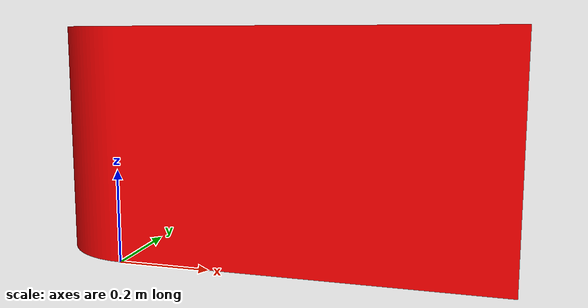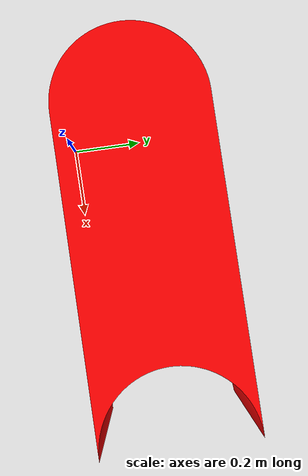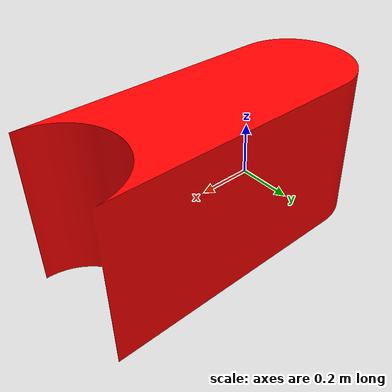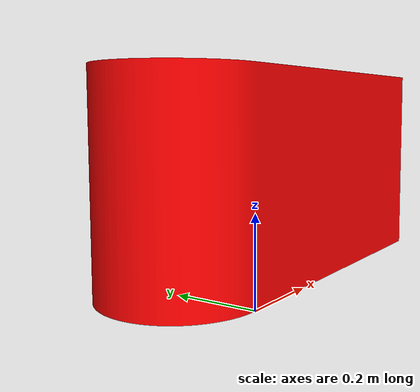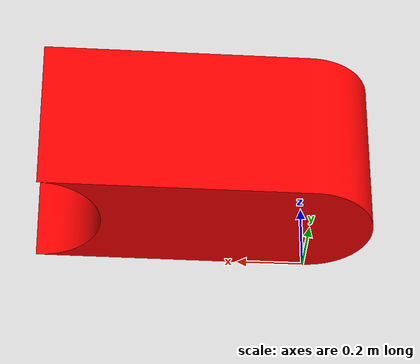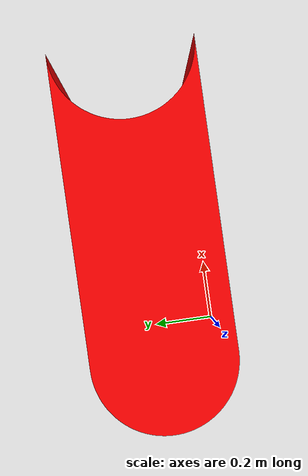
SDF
<?xml version='1.0'?>
<sdf version="1.5">
  <model name="Tecpro Karting Barrier (red)">
    <pose>0 0 0 0 0 0</pose>
    <link name="link">
      <inertial>
        <pose>0.370960 0.295000 0.600000 0 0 0</pose><!-- center of mass from meshlab -->
        <mass>45</mass>
        <inertia> <!-- calculated in meshlab -->
          <ixx>6.705389599</ixx>
          <ixy>0.0</ixy>
          <ixz>0.0</ixz>
          <iyy>11.04078121</iyy>
          <iyz>0.0</iyz>
          <izz>6.946127121</izz>
        </inertia>
      </inertial>
      <collision name="collision">
        <pose>0.295 0.295 0.6 0 0 0</pose>
        <geometry>
          <box>
            <size>1.205 0.590 1.2</size>
          </box>
        </geometry>
      </collision>
      <visual name="visual">
        <geometry>
          <mesh>
            <uri>model://red_barrier/meshes/barrier.stl</uri>
          </mesh>
        </geometry>
        <material>
          <ambient>1 0 0 1</ambient>
          <diffuse>1 0 0 1</diffuse>
          <specular>0.1 0.1 0.1 1</specular>
          <emissive>0 0 0 0</emissive>
        </material>
      </visual>
    </link>
  </model>
</sdf>
